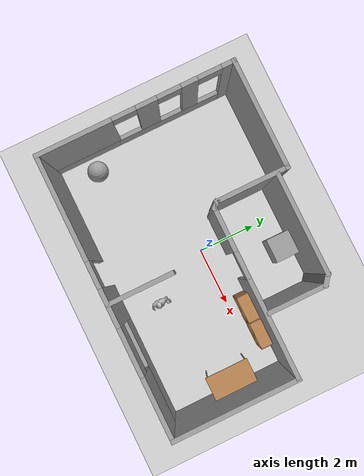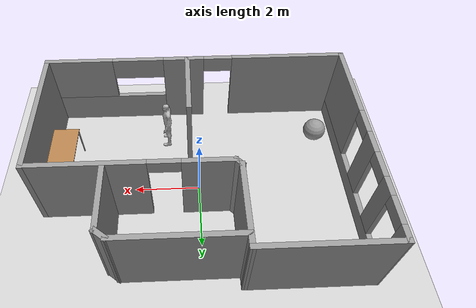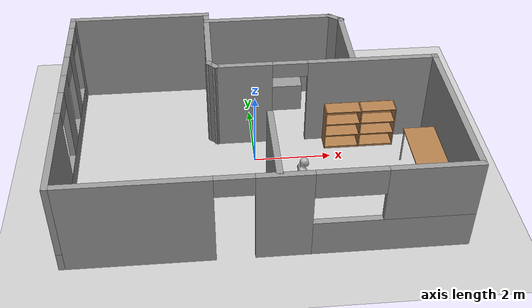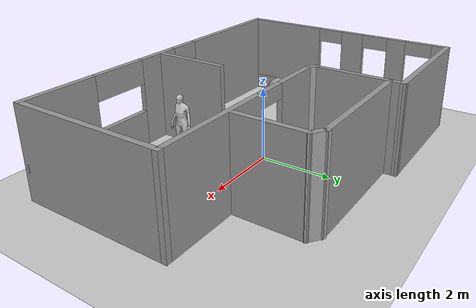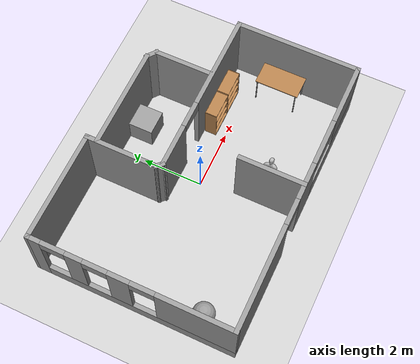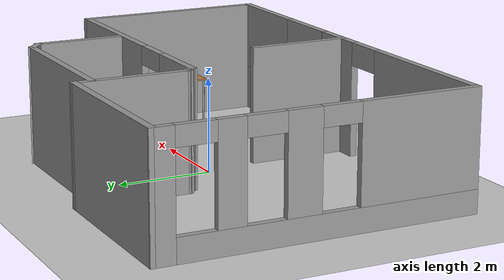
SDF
<sdf version="1.7">
 <world name="default">
  <light name="sun" type="directional">
   <pose>0 0 10 0 -0 0</pose>
   <diffuse>0.8 0.8 0.8 1</diffuse>
   <specular>0.2 0.2 0.2 1</specular>
   <attenuation>
    <range>1000</range>
    <constant>0.9</constant>
    <linear>0.01</linear>
    <quadratic>0.001</quadratic>
   </attenuation>
   <direction>-0.5 0.1 -0.9</direction>
   <spot><inner_angle>0</inner_angle><outer_angle>0</outer_angle><falloff>0</falloff></spot>
  </light>
  <model name="ground_plane">
   <static>1</static>
   <link name="link">
    <collision name="collision">
     <geometry><plane><normal>0 0 1</normal><size>100 100</size></plane></geometry>
     <surface>
      <contact><collide_bitmask>65535</collide_bitmask></contact>
      <friction><ode><mu>100</mu><mu2>50</mu2></ode></friction>
     </surface>
    </collision>
    <visual name="visual">
     <cast_shadows>0</cast_shadows>
     <geometry><plane><normal>0 0 1</normal><size>100 100</size></plane></geometry>
     <material>
      <script><uri>file://media/materials/scripts/gazebo.material</uri><name>Gazebo/Grey</name></script>
     </material>
    </visual>
   </link>
  </model>
  <gravity>0 0 -9.8</gravity>
  <magnetic_field>6e-06 2.3e-05 -4.2e-05</magnetic_field>
  <atmosphere type="adiabatic"/>
  <physics type="ode">
   <max_step_size>0.001</max_step_size>
   <real_time_factor>1</real_time_factor>
   <real_time_update_rate>1000</real_time_update_rate>
  </physics>
  <scene><ambient>0.4 0.4 0.4 1</ambient><background>0.7 0.7 0.7 1</background><shadows>1</shadows></scene>
  <spherical_coordinates>
   <surface_model>EARTH_WGS84</surface_model>
   <latitude_deg>0</latitude_deg>
   <longitude_deg>0</longitude_deg>
   <elevation>0</elevation>
   <heading_deg>0</heading_deg>
  </spherical_coordinates>
  <model name="Studio">
   <link name="Wall_0">
    <pose>-4.67499 -0.000543 0 0 -0 -1.5708</pose>
    <visual name="Wall_0_Visual_0">
     <pose>-3.1292 0 1.25 0 -0 0</pose>
     <geometry><box><size>0.491594 0.15 2.5</size></box></geometry>
     <material>
      <script><uri>file://media/materials/scripts/gazebo.material</uri><name>Gazebo/Grey</name></script>
      <ambient>1 1 1 1</ambient>
     </material>
     <meta><layer>0</layer></meta>
    </visual>
    <collision name="Wall_0_Collision_0">
     <geometry><box><size>0.491594 0.15 2.5</size></box></geometry>
     <pose>-3.1292 0 1.25 0 -0 0</pose>
    </collision>
    <visual name="Wall_0_Visual_1">
     <pose>0.245797 0 0.25 0 -0 0</pose>
     <geometry><box><size>6.25841 0.15 0.5</size></box></geometry>
     <material>
      <script><uri>file://media/materials/scripts/gazebo.material</uri><name>Gazebo/Grey</name></script>
      <ambient>1 1 1 1</ambient>
     </material>
     <meta><layer>0</layer></meta>
    </visual>
    <collision name="Wall_0_Collision_1">
     <geometry><box><size>6.25841 0.15 0.5</size></box></geometry>
     <pose>0.245797 0 0.25 0 -0 0</pose>
    </collision>
    <visual name="Wall_0_Visual_2">
     <pose>-1.79841 0 1.5 0 -0 0</pose>
     <geometry><box><size>0.57 0.15 2</size></box></geometry>
     <material>
      <script><uri>file://media/materials/scripts/gazebo.material</uri><name>Gazebo/Grey</name></script>
      <ambient>1 1 1 1</ambient>
     </material>
     <meta><layer>0</layer></meta>
    </visual>
    <collision name="Wall_0_Collision_2">
     <geometry><box><size>0.57 0.15 2</size></box></geometry>
     <pose>-1.79841 0 1.5 0 -0 0</pose>
    </collision>
    <visual name="Wall_0_Visual_3">
     <pose>-0.358406 0 1.5 0 -0 0</pose>
     <geometry><box><size>0.71 0.15 2</size></box></geometry>
     <material>
      <script><uri>file://media/materials/scripts/gazebo.material</uri><name>Gazebo/Grey</name></script>
      <ambient>1 1 1 1</ambient>
     </material>
     <meta><layer>0</layer></meta>
    </visual>
    <collision name="Wall_0_Collision_3">
     <geometry><box><size>0.71 0.15 2</size></box></geometry>
     <pose>-0.358406 0 1.5 0 -0 0</pose>
    </collision>
    <visual name="Wall_0_Visual_4">
     <pose>2.0858 0 1.5 0 -0 0</pose>
     <geometry><box><size>2.57841 0.15 2</size></box></geometry>
     <material>
      <script><uri>file://media/materials/scripts/gazebo.material</uri><name>Gazebo/Grey</name></script>
      <ambient>1 1 1 1</ambient>
     </material>
     <meta><layer>0</layer></meta>
    </visual>
    <collision name="Wall_0_Collision_4">
     <geometry><box><size>2.57841 0.15 2</size></box></geometry>
     <pose>2.0858 0 1.5 0 -0 0</pose>
    </collision>
    <visual name="Wall_0_Visual_5">
     <pose>-2.48341 0 2.3 0 -0 0</pose>
     <geometry><box><size>0.8 0.15 0.4</size></box></geometry>
     <material>
      <script><uri>file://media/materials/scripts/gazebo.material</uri><name>Gazebo/Grey</name></script>
      <ambient>1 1 1 1</ambient>
     </material>
     <meta><layer>0</layer></meta>
    </visual>
    <collision name="Wall_0_Collision_5">
     <geometry><box><size>0.8 0.15 0.4</size></box></geometry>
     <pose>-2.48341 0 2.3 0 -0 0</pose>
    </collision>
    <visual name="Wall_0_Visual_6">
     <pose>-1.11341 0 2.3 0 -0 0</pose>
     <geometry><box><size>0.8 0.15 0.4</size></box></geometry>
     <material>
      <script><uri>file://media/materials/scripts/gazebo.material</uri><name>Gazebo/Grey</name></script>
      <ambient>1 1 1 1</ambient>
     </material>
     <meta><layer>0</layer></meta>
    </visual>
    <collision name="Wall_0_Collision_6">
     <geometry><box><size>0.8 0.15 0.4</size></box></geometry>
     <pose>-1.11341 0 2.3 0 -0 0</pose>
    </collision>
    <visual name="Wall_0_Visual_7">
     <pose>0.396594 0 2.3 0 -0 0</pose>
     <geometry><box><size>0.8 0.15 0.4</size></box></geometry>
     <material>
      <script><uri>file://media/materials/scripts/gazebo.material</uri><name>Gazebo/Grey</name></script>
      <ambient>1 1 1 1</ambient>
     </material>
     <meta><layer>0</layer></meta>
    </visual>
    <collision name="Wall_0_Collision_7">
     <geometry><box><size>0.8 0.15 0.4</size></box></geometry>
     <pose>0.396594 0 2.3 0 -0 0</pose>
    </collision>
   </link>
   <link name="Wall_1">
    <pose>1.1e-05 -3.30054 0 0 -0 0</pose>
    <visual name="Wall_1_Visual_0">
     <pose>-2.95897 0 1.25 0 -0 0</pose>
     <geometry><box><size>3.58207 0.15 2.5</size></box></geometry>
     <material>
      <script><uri>file://media/materials/scripts/gazebo.material</uri><name>Gazebo/Grey</name></script>
      <ambient>1 1 1 1</ambient>
     </material>
     <meta><layer>0</layer></meta>
    </visual>
    <collision name="Wall_1_Collision_0">
     <geometry><box><size>3.58207 0.15 2.5</size></box></geometry>
     <pose>-2.95897 0 1.25 0 -0 0</pose>
    </collision>
    <visual name="Wall_1_Visual_1">
     <pose>0.377071 0 1.25 0 -0 0</pose>
     <geometry><box><size>1.29 0.15 2.5</size></box></geometry>
     <material>
      <script><uri>file://media/materials/scripts/gazebo.material</uri><name>Gazebo/Grey</name></script>
      <ambient>1 1 1 1</ambient>
     </material>
     <meta><layer>0</layer></meta>
    </visual>
    <collision name="Wall_1_Collision_1">
     <geometry><box><size>1.29 0.15 2.5</size></box></geometry>
     <pose>0.377071 0 1.25 0 -0 0</pose>
    </collision>
    <visual name="Wall_1_Visual_2">
     <pose>2.88604 0 0.5 0 -0 0</pose>
     <geometry><box><size>3.72793 0.15 1</size></box></geometry>
     <material>
      <script><uri>file://media/materials/scripts/gazebo.material</uri><name>Gazebo/Grey</name></script>
      <ambient>1 1 1 1</ambient>
     </material>
     <meta><layer>0</layer></meta>
    </visual>
    <collision name="Wall_1_Collision_2">
     <geometry><box><size>3.72793 0.15 1</size></box></geometry>
     <pose>2.88604 0 0.5 0 -0 0</pose>
    </collision>
    <visual name="Wall_1_Visual_3">
     <pose>3.68603 0 1.75 0 -0 0</pose>
     <geometry><box><size>2.12793 0.15 1.5</size></box></geometry>
     <material>
      <script><uri>file://media/materials/scripts/gazebo.material</uri><name>Gazebo/Grey</name></script>
      <ambient>1 1 1 1</ambient>
     </material>
     <meta><layer>0</layer></meta>
    </visual>
    <collision name="Wall_1_Collision_3">
     <geometry><box><size>2.12793 0.15 1.5</size></box></geometry>
     <pose>3.68603 0 1.75 0 -0 0</pose>
    </collision>
    <visual name="Wall_1_Visual_4">
     <pose>1.82207 0 2.15 0 -0 0</pose>
     <geometry><box><size>1.6 0.15 0.7</size></box></geometry>
     <material>
      <script><uri>file://media/materials/scripts/gazebo.material</uri><name>Gazebo/Grey</name></script>
      <ambient>1 1 1 1</ambient>
     </material>
     <meta><layer>0</layer></meta>
    </visual>
    <collision name="Wall_1_Collision_4">
     <geometry><box><size>1.6 0.15 0.7</size></box></geometry>
     <pose>1.82207 0 2.15 0 -0 0</pose>
    </collision>
    <visual name="Wall_1_Visual_5">
     <pose>-0.717929 0 2.25 0 -0 0</pose>
     <geometry><box><size>0.9 0.15 0.5</size></box></geometry>
     <material>
      <script><uri>file://media/materials/scripts/gazebo.material</uri><name>Gazebo/Grey</name></script>
      <ambient>1 1 1 1</ambient>
     </material>
     <meta><layer>0</layer></meta>
    </visual>
    <collision name="Wall_1_Collision_5">
     <geometry><box><size>0.9 0.15 0.5</size></box></geometry>
     <pose>-0.717929 0 2.25 0 -0 0</pose>
    </collision>
   </link>
   <link name="Wall_10">
    <collision name="Wall_10_Collision">
     <geometry><box><size>0.363554 0.15 2.5</size></box></geometry>
     <pose>0 0 1.25 0 -0 0</pose>
    </collision>
    <visual name="Wall_10_Visual">
     <pose>0 0 1.25 0 -0 0</pose>
     <geometry><box><size>0.363554 0.15 2.5</size></box></geometry>
     <material>
      <script><uri>file://media/materials/scripts/gazebo.material</uri><name>Gazebo/Grey</name></script>
      <ambient>1 1 1 1</ambient>
     </material>
     <meta><layer>0</layer></meta>
    </visual>
    <pose>-1.00046 0.874989 0 0 -0 2.3558</pose>
   </link>
   <link name="Wall_12">
    <collision name="Wall_12_Collision">
     <geometry><box><size>3.74905 0.15 2.5</size></box></geometry>
     <pose>0 0 1.25 0 -0 0</pose>
    </collision>
    <visual name="Wall_12_Visual">
     <pose>0 0 1.25 0 -0 0</pose>
     <geometry><box><size>3.74905 0.15 2.5</size></box></geometry>
     <material>
      <script><uri>file://media/materials/scripts/gazebo.material</uri><name>Gazebo/Grey</name></script>
      <ambient>1 1 1 1</ambient>
     </material>
     <meta><layer>0</layer></meta>
    </visual>
    <pose>-2.87546 3.29999 0 0 -0 -3.1413</pose>
   </link>
   <link name="Wall_15">
    <collision name="Wall_15_Collision">
     <geometry><box><size>3.5 0.15 2.5</size></box></geometry>
     <pose>0 0 1.25 0 -0 0</pose>
    </collision>
    <visual name="Wall_15_Visual">
     <pose>0 0 1.25 0 -0 0</pose>
     <geometry><box><size>3.5 0.15 2.5</size></box></geometry>
     <material>
      <script><uri>file://media/materials/scripts/gazebo.material</uri><name>Gazebo/Grey</name></script>
      <ambient>1 1 1 1</ambient>
     </material>
     <meta><layer>0</layer></meta>
    </visual>
    <pose>0.617765 2.95327 0 0 -0 0</pose>
   </link>
   <link name="Wall_17">
    <collision name="Wall_17_Collision">
     <geometry><box><size>2 0.15 2.5</size></box></geometry>
     <pose>0 0 1.25 0 -0 0</pose>
    </collision>
    <visual name="Wall_17_Visual">
     <pose>0 0 1.25 0 -0 0</pose>
     <geometry><box><size>2 0.15 2.5</size></box></geometry>
     <material>
      <script><uri>file://media/materials/scripts/gazebo.material</uri><name>Gazebo/Grey</name></script>
      <ambient>1 1 1 1</ambient>
     </material>
     <meta><layer>0</layer></meta>
    </visual>
    <pose>2.56568 1.81367 0 0 -0 1.5708</pose>
   </link>
   <link name="Wall_18">
    <collision name="Wall_18_Collision">
     <geometry><box><size>0.497183 0.15 2.5</size></box></geometry>
     <pose>0 0 1.25 0 -0 0</pose>
    </collision>
    <visual name="Wall_18_Visual">
     <pose>0 0 1.25 0 -0 0</pose>
     <geometry><box><size>0.497183 0.15 2.5</size></box></geometry>
     <material>
      <script><uri>file://media/materials/scripts/gazebo.material</uri><name>Gazebo/Grey</name></script>
      <ambient>1 1 1 1</ambient>
     </material>
     <meta><layer>0</layer></meta>
    </visual>
    <pose>2.42922 2.84597 0 0 -0 2.47524</pose>
   </link>
   <link name="Wall_21">
    <collision name="Wall_21_Collision">
     <geometry><box><size>2.25 0.15 2.5</size></box></geometry>
     <pose>0 0 1.25 0 -0 0</pose>
    </collision>
    <visual name="Wall_21_Visual">
     <pose>0 0 1.25 0 -0 0</pose>
     <geometry><box><size>2.25 0.15 2.5</size></box></geometry>
     <material>
      <script><uri>file://media/materials/scripts/gazebo.material</uri><name>Gazebo/Grey</name></script>
      <ambient>1 1 1 1</ambient>
     </material>
     <meta><layer>0</layer></meta>
    </visual>
    <pose>0.256577 -2.24383 0 0 -0 1.5708</pose>
   </link>
   <link name="Wall_5">
    <collision name="Wall_5_Collision">
     <geometry><box><size>2.5 0.15 2.5</size></box></geometry>
     <pose>0 0 1.25 0 -0 0</pose>
    </collision>
    <visual name="Wall_5_Visual">
     <pose>0 0 1.25 0 -0 0</pose>
     <geometry><box><size>2.5 0.15 2.5</size></box></geometry>
     <material>
      <script><uri>file://media/materials/scripts/gazebo.material</uri><name>Gazebo/Grey</name></script>
      <ambient>1 1 1 1</ambient>
     </material>
     <meta><layer>0</layer></meta>
    </visual>
    <pose>-1.07594 2.12552 0 0 -0 -1.5708</pose>
   </link>
   <link name="Wall_8">
    <collision name="Wall_8_Collision">
     <geometry><box><size>4.25 0.15 2.5</size></box></geometry>
     <pose>0 0 1.25 0 -0 0</pose>
    </collision>
    <visual name="Wall_8_Visual">
     <pose>0 0 1.25 0 -0 0</pose>
     <geometry><box><size>4.25 0.15 2.5</size></box></geometry>
     <material>
      <script><uri>file://media/materials/scripts/gazebo.material</uri><name>Gazebo/Grey</name></script>
      <ambient>1 1 1 1</ambient>
     </material>
     <meta><layer>0</layer></meta>
    </visual>
    <pose>4.67501 -1.25054 0 0 -0 1.5708</pose>
   </link>
   <link name="Wall_9">
    <pose>1.87501 0.799457 0 0 -0 3.14159</pose>
    <visual name="Wall_9_Visual_0">
     <pose>-1.20604 0 1.25 0 -0 0</pose>
     <geometry><box><size>3.33793 0.15 2.5</size></box></geometry>
     <material>
      <script><uri>file://media/materials/scripts/gazebo.material</uri><name>Gazebo/Grey</name></script>
      <ambient>1 1 1 1</ambient>
     </material>
     <meta><layer>0</layer></meta>
    </visual>
    <collision name="Wall_9_Collision_0">
     <geometry><box><size>3.33793 0.15 2.5</size></box></geometry>
     <pose>-1.20604 0 1.25 0 -0 0</pose>
    </collision>
    <visual name="Wall_9_Visual_1">
     <pose>2.11896 0 1.25 0 -0 0</pose>
     <geometry><box><size>1.51207 0.15 2.5</size></box></geometry>
     <material>
      <script><uri>file://media/materials/scripts/gazebo.material</uri><name>Gazebo/Grey</name></script>
      <ambient>1 1 1 1</ambient>
     </material>
     <meta><layer>0</layer></meta>
    </visual>
    <collision name="Wall_9_Collision_1">
     <geometry><box><size>1.51207 0.15 2.5</size></box></geometry>
     <pose>2.11896 0 1.25 0 -0 0</pose>
    </collision>
    <visual name="Wall_9_Visual_2">
     <pose>0.912929 0 2.3 0 -0 0</pose>
     <geometry><box><size>0.9 0.15 0.4</size></box></geometry>
     <material>
      <script><uri>file://media/materials/scripts/gazebo.material</uri><name>Gazebo/Grey</name></script>
      <ambient>1 1 1 1</ambient>
     </material>
     <meta><layer>0</layer></meta>
    </visual>
    <collision name="Wall_9_Collision_2">
     <geometry><box><size>0.9 0.15 0.4</size></box></geometry>
     <pose>0.912929 0 2.3 0 -0 0</pose>
    </collision>
   </link>
   <static>1</static>
  </model>
  <model name="bookshelf_0">
   <static>1</static>
   <link name="link">
    <inertial><mass>1</mass></inertial>
    <collision name="back">
     <pose>0 0.005 0.6 0 -0 0</pose>
     <geometry><box><size>0.9 0.01 1.2</size></box></geometry>
    </collision>
    <visual name="visual1">
     <pose>0 0.005 0.6 0 -0 0</pose>
     <geometry><box><size>0.9 0.01 1.2</size></box></geometry>
     <material>
      <script><uri>file://media/materials/scripts/gazebo.material</uri><name>Gazebo/Wood</name></script>
     </material>
    </visual>
    <collision name="left_side">
     <pose>0.45 -0.195 0.6 0 -0 0</pose>
     <geometry><box><size>0.02 0.4 1.2</size></box></geometry>
    </collision>
    <visual name="visual2">
     <pose>0.45 -0.195 0.6 0 -0 0</pose>
     <geometry><box><size>0.02 0.4 1.2</size></box></geometry>
     <material>
      <script><uri>file://media/materials/scripts/gazebo.material</uri><name>Gazebo/Wood</name></script>
     </material>
    </visual>
    <collision name="right_side">
     <pose>-0.45 -0.195 0.6 0 -0 0</pose>
     <geometry><box><size>0.02 0.4 1.2</size></box></geometry>
    </collision>
    <visual name="visual3">
     <pose>-0.45 -0.195 0.6 0 -0 0</pose>
     <geometry><box><size>0.02 0.4 1.2</size></box></geometry>
     <material>
      <script><uri>file://media/materials/scripts/gazebo.material</uri><name>Gazebo/Wood</name></script>
     </material>
    </visual>
    <collision name="bottom">
     <pose>0 -0.195 0.03 0 -0 0</pose>
     <geometry><box><size>0.88 0.4 0.06</size></box></geometry>
    </collision>
    <visual name="visual4">
     <pose>0 -0.195 0.03 0 -0 0</pose>
     <geometry><box><size>0.88 0.4 0.06</size></box></geometry>
     <material>
      <script><uri>file://media/materials/scripts/gazebo.material</uri><name>Gazebo/Wood</name></script>
     </material>
    </visual>
    <collision name="top">
     <pose>0 -0.195 1.19 0 -0 0</pose>
     <geometry><box><size>0.88 0.4 0.02</size></box></geometry>
    </collision>
    <visual name="visual5">
     <pose>0 -0.195 1.19 0 -0 0</pose>
     <geometry><box><size>0.88 0.4 0.02</size></box></geometry>
     <material>
      <script><uri>file://media/materials/scripts/gazebo.material</uri><name>Gazebo/Wood</name></script>
     </material>
    </visual>
    <collision name="low_shelf">
     <pose>0 -0.195 0.43 0 -0 0</pose>
     <geometry><box><size>0.88 0.4 0.02</size></box></geometry>
    </collision>
    <visual name="visual6">
     <pose>0 -0.195 0.43 0 -0 0</pose>
     <geometry><box><size>0.88 0.4 0.02</size></box></geometry>
     <material>
      <script><uri>file://media/materials/scripts/gazebo.material</uri><name>Gazebo/Wood</name></script>
     </material>
    </visual>
    <collision name="high_shelf">
     <pose>0 -0.195 0.8 0 -0 0</pose>
     <geometry><box><size>0.88 0.4 0.02</size></box></geometry>
    </collision>
    <visual name="visual7">
     <pose>0 -0.195 0.8 0 -0 0</pose>
     <geometry><box><size>0.88 0.4 0.02</size></box></geometry>
     <material>
      <script><uri>file://media/materials/scripts/gazebo.material</uri><name>Gazebo/Wood</name></script>
     </material>
    </visual>
   </link>
   <pose>2.34241 0.694636 0 0 -0 0</pose>
  </model>
  <model name="unit_sphere">
   <pose>-4 -2 0.363693 0 -0 0</pose>
   <link name="link">
    <inertial>
     <mass>1</mass>
     <inertia><ixx>0.1</ixx><ixy>0</ixy><ixz>0</ixz><iyy>0.1</iyy><iyz>0</iyz><izz>0.1</izz></inertia>
    </inertial>
    <collision name="collision"><geometry><sphere><radius>0.363693</radius></sphere></geometry></collision>
    <visual name="visual">
     <geometry><sphere><radius>0.363693</radius></sphere></geometry>
     <material>
      <script><name>Gazebo/Grey</name><uri>file://media/materials/scripts/gazebo.material</uri></script>
     </material>
    </visual>
   </link>
  </model>
  <model name="table">
   <static>1</static>
   <link name="link">
    <collision name="surface">
     <pose>0 0 1 0 -0 0</pose>
     <geometry><box><size>1.5 0.8 0.03</size></box></geometry>
     <surface><friction><ode><mu>0.6</mu><mu2>0.6</mu2></ode></friction></surface>
    </collision>
    <visual name="visual1">
     <pose>0 0 1 0 -0 0</pose>
     <geometry><box><size>1.5 0.8 0.03</size></box></geometry>
     <material>
      <script><uri>file://media/materials/scripts/gazebo.material</uri><name>Gazebo/Wood</name></script>
     </material>
    </visual>
    <collision name="front_left_leg">
     <pose>0.68 0.38 0.5 0 -0 0</pose>
     <geometry><cylinder><radius>0.02</radius><length>1</length></cylinder></geometry>
    </collision>
    <visual name="front_left_leg">
     <pose>0.68 0.38 0.5 0 -0 0</pose>
     <geometry><cylinder><radius>0.02</radius><length>1</length></cylinder></geometry>
     <material>
      <script><uri>file://media/materials/scripts/gazebo.material</uri><name>Gazebo/Grey</name></script>
     </material>
    </visual>
    <collision name="front_right_leg">
     <pose>0.68 -0.38 0.5 0 -0 0</pose>
     <geometry><cylinder><radius>0.02</radius><length>1</length></cylinder></geometry>
    </collision>
    <visual name="front_right_leg">
     <pose>0.68 -0.38 0.5 0 -0 0</pose>
     <geometry><cylinder><radius>0.02</radius><length>1</length></cylinder></geometry>
     <material>
      <script><uri>file://media/materials/scripts/gazebo.material</uri><name>Gazebo/Grey</name></script>
     </material>
    </visual>
    <collision name="back_right_leg">
     <pose>-0.68 -0.38 0.5 0 -0 0</pose>
     <geometry><cylinder><radius>0.02</radius><length>1</length></cylinder></geometry>
    </collision>
    <visual name="back_right_leg">
     <pose>-0.68 -0.38 0.5 0 -0 0</pose>
     <geometry><cylinder><radius>0.02</radius><length>1</length></cylinder></geometry>
     <material>
      <script><uri>file://media/materials/scripts/gazebo.material</uri><name>Gazebo/Grey</name></script>
     </material>
    </visual>
    <collision name="back_left_leg">
     <pose>-0.68 0.38 0.5 0 -0 0</pose>
     <geometry><cylinder><radius>0.02</radius><length>1</length></cylinder></geometry>
    </collision>
    <visual name="back_left_leg">
     <pose>-0.68 0.38 0.5 0 -0 0</pose>
     <geometry><cylinder><radius>0.02</radius><length>1</length></cylinder></geometry>
     <material>
      <script><uri>file://media/materials/scripts/gazebo.material</uri><name>Gazebo/Grey</name></script>
     </material>
    </visual>
   </link>
   <pose>4.1946 -1 0 0 0 -1.5708</pose>
  </model>
  <model name="bookshelf">
   <static>1</static>
   <link name="link">
    <inertial><mass>1</mass></inertial>
    <collision name="back">
     <pose>0 0.005 0.6 0 -0 0</pose>
     <geometry><box><size>0.9 0.01 1.2</size></box></geometry>
    </collision>
    <visual name="visual1">
     <pose>0 0.005 0.6 0 -0 0</pose>
     <geometry><box><size>0.9 0.01 1.2</size></box></geometry>
     <material>
      <script><uri>file://media/materials/scripts/gazebo.material</uri><name>Gazebo/Wood</name></script>
     </material>
    </visual>
    <collision name="left_side">
     <pose>0.45 -0.195 0.6 0 -0 0</pose>
     <geometry><box><size>0.02 0.4 1.2</size></box></geometry>
    </collision>
    <visual name="visual2">
     <pose>0.45 -0.195 0.6 0 -0 0</pose>
     <geometry><box><size>0.02 0.4 1.2</size></box></geometry>
     <material>
      <script><uri>file://media/materials/scripts/gazebo.material</uri><name>Gazebo/Wood</name></script>
     </material>
    </visual>
    <collision name="right_side">
     <pose>-0.45 -0.195 0.6 0 -0 0</pose>
     <geometry><box><size>0.02 0.4 1.2</size></box></geometry>
    </collision>
    <visual name="visual3">
     <pose>-0.45 -0.195 0.6 0 -0 0</pose>
     <geometry><box><size>0.02 0.4 1.2</size></box></geometry>
     <material>
      <script><uri>file://media/materials/scripts/gazebo.material</uri><name>Gazebo/Wood</name></script>
     </material>
    </visual>
    <collision name="bottom">
     <pose>0 -0.195 0.03 0 -0 0</pose>
     <geometry><box><size>0.88 0.4 0.06</size></box></geometry>
    </collision>
    <visual name="visual4">
     <pose>0 -0.195 0.03 0 -0 0</pose>
     <geometry><box><size>0.88 0.4 0.06</size></box></geometry>
     <material>
      <script><uri>file://media/materials/scripts/gazebo.material</uri><name>Gazebo/Wood</name></script>
     </material>
    </visual>
    <collision name="top">
     <pose>0 -0.195 1.19 0 -0 0</pose>
     <geometry><box><size>0.88 0.4 0.02</size></box></geometry>
    </collision>
    <visual name="visual5">
     <pose>0 -0.195 1.19 0 -0 0</pose>
     <geometry><box><size>0.88 0.4 0.02</size></box></geometry>
     <material>
      <script><uri>file://media/materials/scripts/gazebo.material</uri><name>Gazebo/Wood</name></script>
     </material>
    </visual>
    <collision name="low_shelf">
     <pose>0 -0.195 0.43 0 -0 0</pose>
     <geometry><box><size>0.88 0.4 0.02</size></box></geometry>
    </collision>
    <visual name="visual6">
     <pose>0 -0.195 0.43 0 -0 0</pose>
     <geometry><box><size>0.88 0.4 0.02</size></box></geometry>
     <material>
      <script><uri>file://media/materials/scripts/gazebo.material</uri><name>Gazebo/Wood</name></script>
     </material>
    </visual>
    <collision name="high_shelf">
     <pose>0 -0.195 0.8 0 -0 0</pose>
     <geometry><box><size>0.88 0.4 0.02</size></box></geometry>
    </collision>
    <visual name="visual7">
     <pose>0 -0.195 0.8 0 -0 0</pose>
     <geometry><box><size>0.88 0.4 0.02</size></box></geometry>
     <material>
      <script><uri>file://media/materials/scripts/gazebo.material</uri><name>Gazebo/Wood</name></script>
     </material>
    </visual>
   </link>
   <pose>3.26521 0.697665 0 0 -0 0</pose>
  </model>
  <model name="unit_box">
   <pose>1.06221 2.47185 0.408432 0 -0 0</pose>
   <link name="link">
    <inertial>
     <mass>1</mass>
     <inertia>
      <ixx>0.166667</ixx>
      <ixy>0</ixy>
      <ixz>0</ixz>
      <iyy>0.166667</iyy>
      <iyz>0</iyz>
      <izz>0.166667</izz>
     </inertia>
    </inertial>
    <collision name="collision">
     <geometry><box><size>0.833314 0.812831 0.816865</size></box></geometry>
    </collision>
    <visual name="visual">
     <geometry><box><size>0.833314 0.812831 0.816865</size></box></geometry>
     <material>
      <script><name>Gazebo/Grey</name><uri>file://media/materials/scripts/gazebo.material</uri></script>
     </material>
    </visual>
   </link>
  </model>
  <model name="myman">
   <link name="link">
    <inertial>
     <pose>0 -0.1 0.95 0 -0 0</pose>
     <mass>80</mass>
     <inertia><ixx>24.88</ixx><ixy>0</ixy><ixz>0</ixz><iyy>25.73</iyy><iyz>0</iyz><izz>2.48</izz></inertia>
    </inertial>
    <collision name="bottom">
     <pose>0 0 0.01 0 -0 1.57</pose>
     <geometry><box><size>0.5 0.35 0.02</size></box></geometry>
    </collision>
    <collision name="person">
     <pose>0 0 0.02 0 -0 1.57</pose>
     <geometry><mesh><uri>../materials/meshes_myman/myman_2.dae</uri></mesh></geometry>
    </collision>
    <visual name="visual">
     <pose>0 0 0.02 0 -0 1.57</pose>
     <geometry><mesh><uri>../materials/meshes_myman/myman_2.dae</uri></mesh></geometry>
    </visual>
   </link>
   <pose>1 -2 1e-06 -4e-06 -1e-06 -1.7e-05</pose>
  </model>
 </world>
</sdf>
